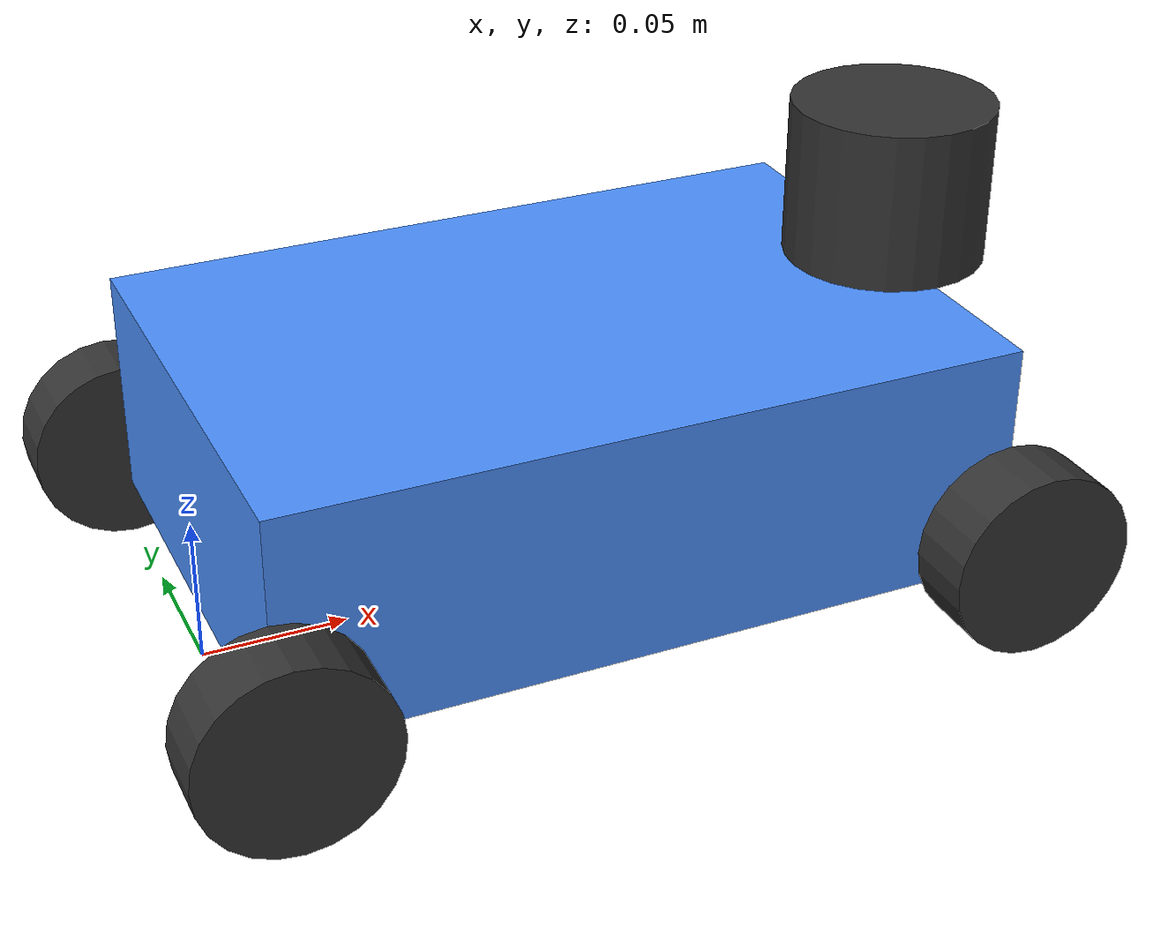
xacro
<?xml version="1.0"?>

<!-- Simple mode for ACTT's rviz -->

<robot xmlns:xacro="http://www.ros.org/wiki/xacro" name="actt">

   <!-- Define ACTT-specific values -->
   <xacro:property name="wheelbase" value="0.252"/>
   <xacro:property name="width" value="0.17"/>
   <xacro:property name="height" value="0.08"/>
   <xacro:property name="ground_offset" value="0.02"/>
   <xacro:property name="wheel_radius" value="0.0325"/>
   <xacro:property name="wheel_length" value="0.024"/>
   <xacro:property name="laser_distance_from_base_link" value="0.252"/>
   <xacro:property name="laser_height" value="0.055"/>
   <xacro:property name="laser_radius" value="0.035"/>

   <!-- Color Definition -->
   <material name="black">
      <color rgba="0.2 0.2 0.2 1."/>
   </material>
   <material name="blue">
      <color rgba="0.3 0.57 1. 1."/>
   </material>

   <!-- Composition of ACTT -->
   <link name="base_link">
      <visual>
         <origin xyz="${wheelbase/2} 0 ${ground_offset+height/2}"/>
         <geometry>
            <box size="${wheelbase} ${width} ${height}"/>
         </geometry>
         <material name="blue"/>
      </visual>
   </link>

   <joint name="base_to_laser_model" type="fixed">
      <parent link="base_link"/>
      <child link="laser_model"/>
      <origin xyz="${laser_distance_from_base_link} 0 ${ground_offset+height+(laser_height/2)}"/>
   </joint>

   <link name="laser_model">
      <visual>
         <geometry>
            <cylinder radius="${laser_radius}" length="${laser_height}"/>
         </geometry>
         <material name="black"/>
      </visual>
   </link>

   <joint name="base_to_back_left_wheel" type="fixed">
      <parent link="base_link"/>
      <child  link="back_left_wheel"/>
      <origin xyz="0 ${(wheel_length+width)/2} ${wheel_radius}"/>
   </joint>

   <link name="back_left_wheel">
      <visual>
         <geometry>
            <cylinder radius="${wheel_radius}" length="${wheel_length}"/>
         </geometry>
         <material name="black"/>
         <origin rpy="${pi/2} 0 0"/>
      </visual>
   </link>

   <joint name="base_to_back_right_wheel" type="fixed">
      <parent link="base_link"/>
      <child link="back_right_wheel"/>
      <origin xyz="0 ${-(wheel_length+width)/2} ${wheel_radius}"/>
   </joint>

   <link name="back_right_wheel">
      <visual>
         <geometry>
            <cylinder radius="${wheel_radius}" length="${wheel_length}"/>
         </geometry>
         <material name="black"/>
         <origin rpy="${pi/2} 0 0"/>
      </visual>
   </link>

   <joint name="base_to_front_left_hinge" type="fixed">
      <parent link="base_link"/>
      <child link="front_left_hinge"/>
      <origin xyz="${wheelbase} ${(wheel_length+width)/2} ${wheel_radius}"/>
   </joint>

   <link name="front_left_hinge"/>

   <joint name="front_left_hinge_to_wheel" type="continuous">
      <parent link="front_left_hinge"/>
      <child link="front_left_wheel"/>
   </joint>

   <link name="front_left_wheel">
      <visual>
         <geometry>
            <cylinder radius="${wheel_radius}" length="${wheel_length}"/>
         </geometry>
         <material name="black"/>
         <origin rpy="${pi/2} 0 0"/>
      </visual>
   </link>

   <joint name="base_to_front_right_hinge" type="fixed">
      <parent link="base_link"/>
      <child link="front_right_hinge"/>
      <origin xyz="${wheelbase} ${-(wheel_length+width)/2} ${wheel_radius}"/>
   </joint>

   <link name="front_right_hinge"/>

   <joint name="front_right_hinge_to_wheel" type="continuous">
      <parent link="front_right_hinge"/>
      <child link="front_right_wheel"/>
   </joint>

   <link name="front_right_wheel">
      <visual>
         <geometry>
            <cylinder radius="${wheel_radius}" length="${wheel_length}"/>
         </geometry>
         <material name="black"/>
         <origin rpy="${pi/2} 0 0"/>
      </visual>
   </link>

</robot>
